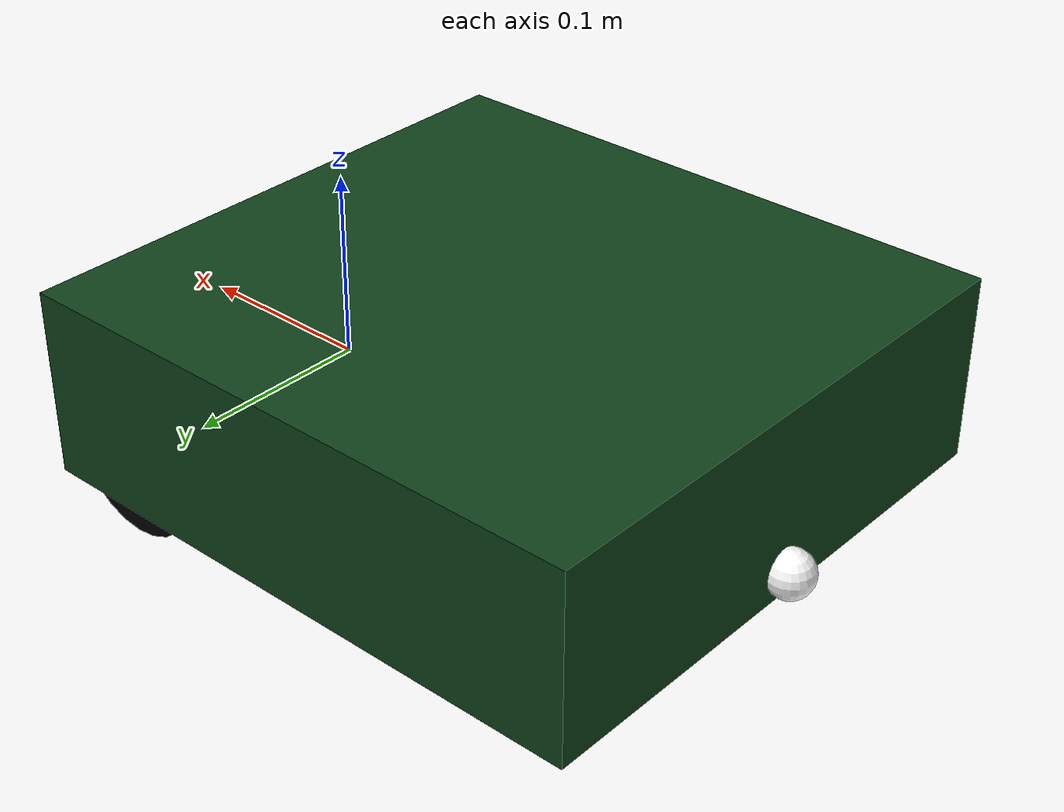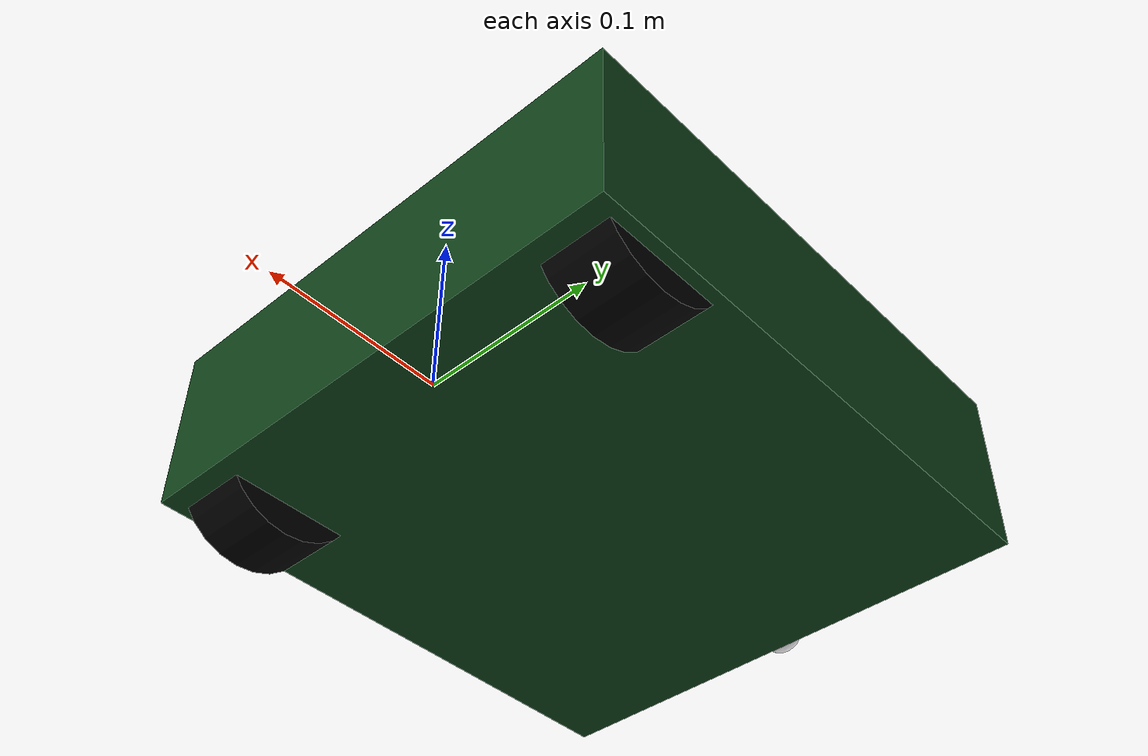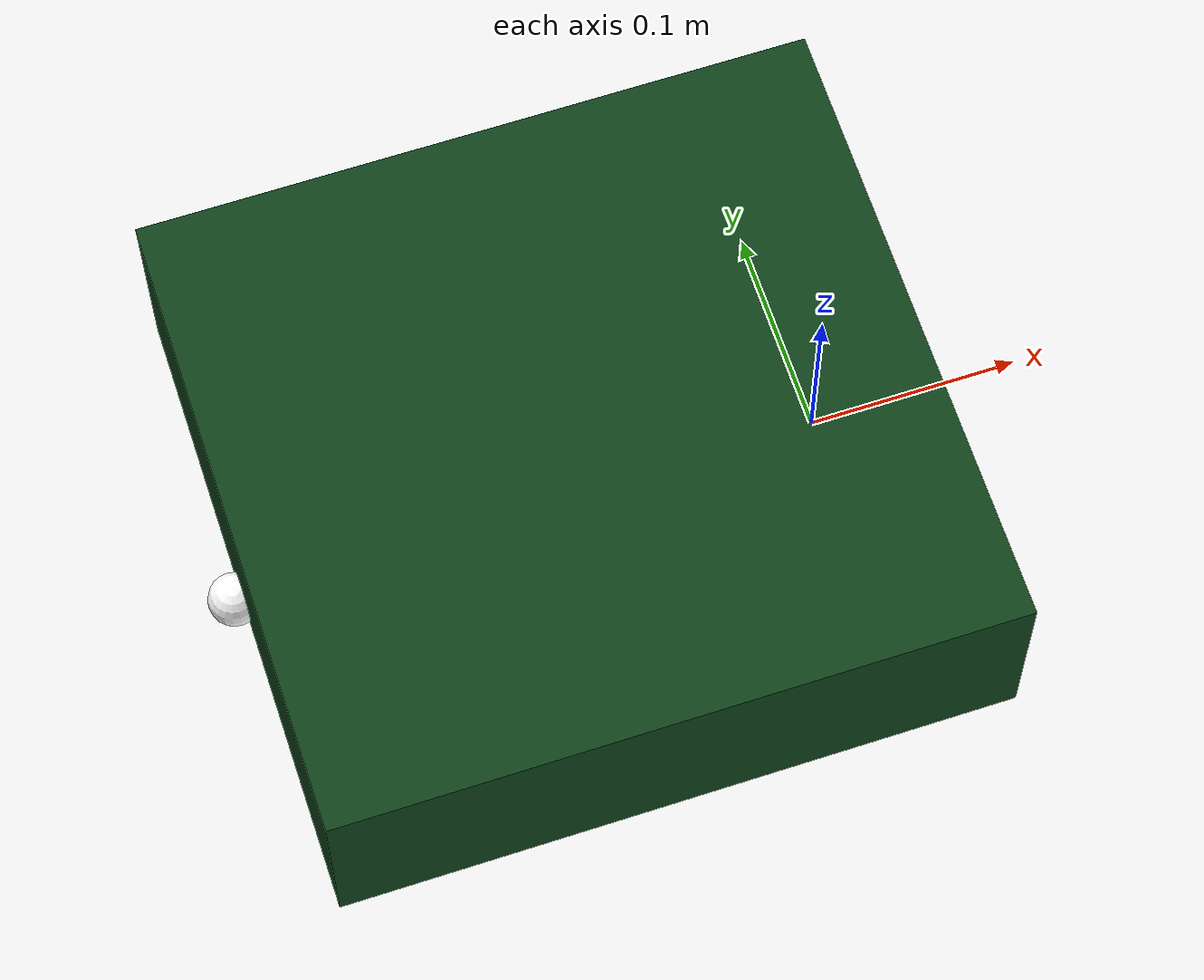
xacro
<?xml version="1.0"?>
<robot xmlns:xacro="http://www.ros.org/wiki/xacro">

  <material name="white">
    <color rgba="1 1 1 1"/>
  </material>

  <material name="green">
    <color rgba="0.06 0.256 0.1 1"/>
  </material>

  <material name="orange">
    <color rgba="1 0.3 0.1 1"/>
  </material>

  <material name="blue">
    <color rgba="0.2 0.2 1 1"/>
  </material>

  <material name="black">
    <color rgba="0 0 0 1"/>
  </material>

  <link name="base_link">
  </link>

  <link name="base_footprint">
  </link>
  <joint name="base_footprint_joint" type="fixed">
      <parent link="base_link"/>
      <child link="base_footprint"/>
      <origin xyz="0 0 0" rpy="0 0 0"/>
  </joint>

  <joint name="chassis_joint" type="fixed">
      <parent link="base_link"/>
      <child link="chassis"/>
      <origin xyz="-0.267 0 0"/>
  </joint>

  <link name="chassis">
      <visual>
          <origin xyz="0.152 0 0.031" rpy="0 0 0"/>
          <geometry>
              <box size="0.322 0.304 0.1"/>
          </geometry>
          <material name="green"/>
      </visual>
      <collision>
        <origin xyz="0.152 0 0.031" rpy="0 0 0"/>
        <geometry>
            <box size="0.322 0.304 0.1"/>
        </geometry>
      </collision>
  </link>

<!-- LEFT WHEEL -->

  <joint name="left_wheel_joint" type="continuous">
      <parent link="base_link"/>
      <child link="left_wheel"/>
      <origin xyz="0 0.125 0.005" rpy="-${pi/2} 0 0"/>
      <axis xyz="0 0 1"/>
  </joint>

  <link name="left_wheel">
      <visual>
          <geometry>
              <cylinder length="0.04" radius="0.042" />
          </geometry>
          <material name="black"/>
      </visual>
      <collision>
          <geometry>
              <cylinder length="0.04" radius="0.042" />
          </geometry>
      </collision>
  </link>

<!-- RIGHT WHEEL -->

  <joint name="right_wheel_joint" type="continuous">
      <parent link="base_link"/>
      <child link="right_wheel"/>
      <origin xyz="0 -0.125 0.005" rpy="${pi/2} 0 0"/>
      <axis xyz="0 0 -1"/>
  </joint>

  <link name="right_wheel">
      <visual>
          <geometry>
              <cylinder length="0.04" radius="0.042" />
          </geometry>
          <material name="black"/>
      </visual>
      <collision>
          <geometry>
              <cylinder length="0.04" radius="0.042" />
          </geometry>
      </collision>
  </link>

<!-- CASTER WHEEL -->

  <joint name="caster_wheel_joint" type="fixed">
      <parent link="chassis"/>
      <child link="caster_wheel"/>
      <origin xyz="-0.013 0 -0.00475" rpy="0 0 0"/>
  </joint>

  <link name="caster_wheel">
      <visual>
          <geometry>
              <sphere radius="0.0125" />
          </geometry>
          <material name="white"/>
      </visual>
      <collision>
          <geometry>
              <sphere radius="0.0125" />
          </geometry>
          <material name="white"/>
      </collision>
  </link>

</robot>
